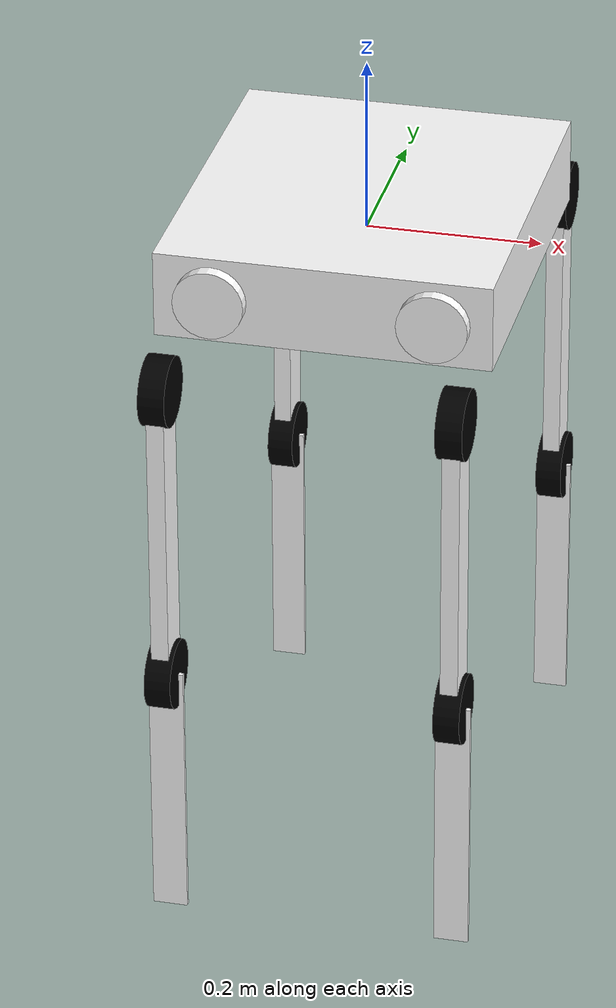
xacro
<?xml version="1.0"?>
<robot name="dogbot" xmlns:xacro="http://ros.org/wiki/xacro">

  <xacro:property name="bodyheight" value="0.1" />
  <xacro:property name="bodywidth" value="0.38" />
  <xacro:property name="bodylen" value="0.43" />
  <xacro:property name="legoffset" value="0.125" />

  <xacro:property name="drivediam" value="0.08" />

  <xacro:property name="upperleglen" value="0.36" />
  <xacro:property name="lowerleglen" value="0.31" />

  <xacro:property name="pi" value="3.1415" />

  <material name="blue">
    <color rgba="0 0 0.8 1"/>
  </material>

  <material name="black">
    <color rgba="0 0 0 1"/>
  </material>

  <material name="white">
    <color rgba="1 1 1 1"/>
  </material>

  <xacro:macro name="default_inertial" params="mass">
    <inertial>
      <mass value="${mass}" />
      <inertia ixx="1.0" ixy="0.0" ixz="0.0" iyy="1.0" iyz="0.0" izz="1.0" />
    </inertial>
  </xacro:macro>

  <link name="base_link">
  </link>

  <link name="body">
    <visual>
      <geometry>
        <box size="${bodywidth} ${bodylen} ${bodyheight}"/>
      </geometry>
      <material name="white"/>
    </visual>
    <collision>
      <geometry>
        <box size="${bodywidth} ${bodylen} ${bodyheight}"/>
      </geometry>
    </collision>

    <xacro:default_inertial mass="4"/>

  </link>

  <joint name="base_joint" type="fixed">
    <axis xyz="0 0 0" rpy="0 0 0" />
    <parent link="base_link"/>
    <child link="body"/>
  </joint>

  <gazebo reference="body">
    <mu1 value="200.0"/>
    <mu2 value="100.0"/>
    <kp value="10000000.0" />
    <kd value="1.0" />
    <material>Gazebo/white</material>
  </gazebo>

  <xacro:macro name="leg" params="prefix suffix reflectx reflecty">
    <link name="${prefix}_${suffix}_hip">
      <visual>
        <origin xyz="0 0 0" rpy="${pi/2} 0 0" />
        <geometry>
          <cylinder radius="${drivediam/2}" length="0.03"/>
        </geometry>
        <material name="white"/>
      </visual>
      <collision>
        <origin xyz="0 0 0" rpy="${pi/2} 0 0" />
        <geometry>
          <cylinder radius="${drivediam/2}" length="0.03"/>
        </geometry>
      </collision>
      <xacro:default_inertial mass="1"/>
    </link>

    <joint name="${prefix}_${suffix}_roll_joint" type="revolute">
      <axis xyz="0 1 0" rpy="0 0 0" />
      <parent link="body"/>
      <child link="${prefix}_${suffix}_hip"/>
      <origin xyz="${legoffset*reflectx} ${bodylen * reflecty/2} 0" rpy="0 0 ${-pi*(1-reflecty)/2}"/>
      <limit
         lower ="${(-pi * (reflectx * reflecty +1)/2) + (pi * (reflectx * reflecty -1)/8) }"
         upper ="${(-pi * (reflectx * reflecty -1)/2) + (pi * (reflectx * reflecty +1)/8) }"
         effort="500" velocity="10.0" />
    </joint>

    <link name="${prefix}_${suffix}_upperleg">
      <visual>
        <origin xyz="0 0 0" rpy="${pi/2} 0 0" />
        <geometry>
          <cylinder radius="${drivediam/2}" length="0.03"/>
        </geometry>
        <material name="black"/>
      </visual>
      <collision>
        <origin xyz="0 0 0" rpy="${pi/2} 0 0" />
        <geometry>
          <cylinder radius="${drivediam/2}" length="0.03"/>
        </geometry>
      </collision>
      <visual>
        <origin xyz="${upperleglen * reflectx /2} 0 0" rpy="${pi/2} 0 0" />
        <geometry>
          <box size="${upperleglen} 0.05 0.02"/>
        </geometry>
        <material name="white"/>
      </visual>
      <collision>
        <origin xyz="${upperleglen * reflectx /2} 0 0" rpy="${pi/2} 0 0" />
        <geometry>
          <box size="${upperleglen} 0.05 0.02"/>
        </geometry>
      </collision>
      <xacro:default_inertial mass="0.7"/>
    </link>

    <joint name="${prefix}_${suffix}_pitch_joint" type="revolute">
      <axis xyz="0 1 0" rpy="0 0 0" />
      <parent link="${prefix}_${suffix}_hip"/>
      <child link="${prefix}_${suffix}_upperleg"/>
      <!--  rpy="0  ${pi * reflectx/2.3} ${pi *reflectx *reflecty /2} -->
      <origin xyz="${0.04*reflectx*reflecty} 0.07 -0.080" rpy="0  ${pi * reflectx/2} ${pi *reflectx *reflecty /2}"/>
      <limit
        lower ="-${pi/2}"
        upper="${pi/2}"
        effort="500"
        velocity="10.0"
        />
    </joint>

    <link name="${prefix}_${suffix}_lowerleg">
      <visual>
        <origin xyz="0 0 0" rpy="${pi/2} 0 0" />
        <geometry>
          <cylinder radius="${drivediam/2}" length="0.03"/>
        </geometry>
        <material name="black"/>
      </visual>
      <collision>
        <origin xyz="0 0 0" rpy="${pi/2} 0 0" />
        <geometry>
          <cylinder radius="${drivediam/2}" length="0.03"/>
        </geometry>
      </collision>
      <visual>
        <origin xyz="${lowerleglen * reflectx /2} 0 0" rpy="${pi/2} 0 0" />
        <geometry>
          <box size="${lowerleglen} 0.005 0.04"/>
        </geometry>
        <material name="white"/>
      </visual>
      <collision>
        <origin xyz="${lowerleglen * reflectx /2} 0 0" rpy="${pi/2} 0 0" />
        <geometry>
          <box size="${lowerleglen} 0.005 0.04"/>
        </geometry>
      </collision>
      <xacro:default_inertial mass="0.3"/>
    </link>

    <gazebo reference="${prefix}_${suffix}_lowerleg">
      <mu1 value="2000.0"/>
      <mu2 value="1000.0"/>
      <kp value="10000000.0" />
      <kd value="1.0" />
      <material>Gazebo/Grey</material>
    </gazebo>

    <joint name="${prefix}_${suffix}_knee_joint" type="revolute">
      <axis xyz="0 1 0" rpy="0 0 0" />
      <parent link="${prefix}_${suffix}_upperleg"/>
      <child link="${prefix}_${suffix}_lowerleg"/>
      <!--
         rpy="0 ${reflectx * pi/6} 0"
         lower ="${(pi * (reflectx -1)/3.5) }"
         upper ="${(pi * (reflectx +1)/3.5) }"
      -->
      <origin xyz="${upperleglen * reflectx} 0 0" rpy="0 0 0"/>
      <limit
         lower ="${(pi * reflectx - pi) }"
         upper ="${(pi * reflectx + pi) }"
         effort="500" velocity="10.0" />
    </joint>

    <transmission name="${prefix}_${suffix}_roll_transmition" >
      <type>transmission_interface/SimpleTransmission</type>
      <joint name="${prefix}_${suffix}_roll_joint">
        <hardwareInterface>hardware_interface/EffortJointInterface</hardwareInterface>
      </joint>
      <actuator name="${prefix}_${suffix}_roll_motor" >
        <hardwareInterface>hardware_interface/EffortJointInterface</hardwareInterface>
        <mechanicalReduction>1</mechanicalReduction>
      </actuator>
    </transmission>

    <transmission name="${prefix}_${suffix}_pitch_transmition" >
      <type>transmission_interface/SimpleTransmission</type>
      <joint name="${prefix}_${suffix}_pitch_joint">
        <hardwareInterface>hardware_interface/EffortJointInterface</hardwareInterface>
      </joint>
      <actuator name="${prefix}_${suffix}_pitch_motor" >
        <hardwareInterface>hardware_interface/EffortJointInterface</hardwareInterface>
        <mechanicalReduction>1</mechanicalReduction>
      </actuator>
    </transmission>

    <transmission name="${prefix}_${suffix}_knee_transmition" >
      <type>transmission_interface/SimpleTransmission</type>
      <joint name="${prefix}_${suffix}_knee_joint">
        <hardwareInterface>hardware_interface/EffortJointInterface</hardwareInterface>
      </joint>
      <actuator name="${prefix}_${suffix}_knee_motor" >
        <hardwareInterface>hardware_interface/EffortJointInterface</hardwareInterface>
        <mechanicalReduction>1</mechanicalReduction>
      </actuator>
    </transmission>

  </xacro:macro>

  <xacro:leg prefix="front" suffix="right" reflectx="-1"  reflecty="-1"/>
  <xacro:leg prefix="front" suffix="left"  reflectx="1" reflecty="-1" />
  <xacro:leg prefix="back"  suffix="right" reflectx="-1"  reflecty="1"/>
  <xacro:leg prefix="back"  suffix="left"  reflectx="1" reflecty="1" />

  <gazebo>
    <plugin name="imu_plugin" filename="libhector_gazebo_ros_imu.so">
      <alwaysOn>true</alwaysOn>
      <bodyName>body</bodyName>
      <robotNamespace>dogbot</robotNamespace>
      <topicName>imu</topicName>
      <serviceName>imu_service</serviceName>
      <gaussianNoise>0.0</gaussianNoise>
      <updateRate>20.0</updateRate>
    </plugin>

    <plugin name="gps_plugin" filename="libhector_gazebo_ros_gps.so">
      <alwaysOn>true</alwaysOn>
      <bodyName>body</bodyName>
      <robotNamespace>dogbot</robotNamespace>
      <topicName>gps</topicName>
      <serviceName>imu_service</serviceName>
      <updateRate>100</updateRate>
      <referenceLatitude>51.5</referenceLatitude>
      <referenceLongitude>0.1278</referenceLongitude>
    </plugin>
  </gazebo>

  <!-- Gazebo plugin for ROS Control -->
  <gazebo>
    <plugin name="gazebo_ros_control" filename="libgazebo_ros_control.so">
      <robotNamespace>/dogbot</robotNamespace>
    </plugin>
  </gazebo>

</robot>
